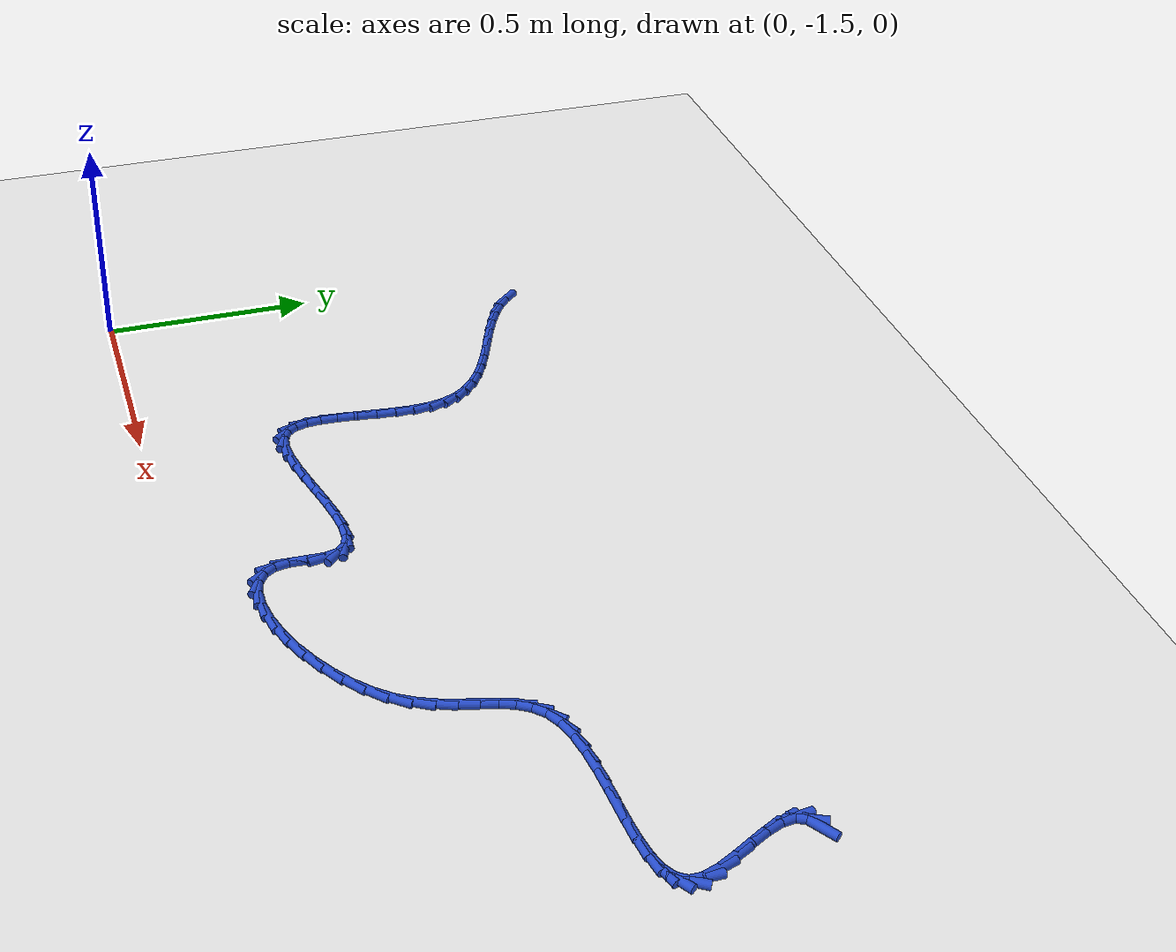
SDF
<sdf version="1.6">
 <world name="default">
  <model name="ground_plane">
   <static>1</static>
   <link name="link">
    <collision name="collision">
     <geometry><plane><normal>0 0 1</normal><size>100 100</size></plane></geometry>
     <surface><friction><ode><mu>100</mu><mu2>50</mu2></ode></friction></surface>
    </collision>
    <visual name="visual">
     <cast_shadows>0</cast_shadows>
     <geometry><plane><normal>0 0 1</normal><size>100 100</size></plane></geometry>
     <material>
      <script><uri>file://media/materials/scripts/gazebo.material</uri><name>Gazebo/WhiteGlow</name></script>
     </material>
    </visual>
   </link>
  </model>
  <model name="line">
   <link name="link_146">
    <pose>1.9742459189359969 -0.4924511090165544 0.01 0 1.57 0.5927250253913241</pose>
    <collision name="collision">
     <geometry><cylinder><radius>0.01</radius><length>0.08</length></cylinder></geometry>
    </collision>
    <visual name="visual">
     <material>
      <script><name>Gazebo/Blue</name><uri>file://media/materials/scripts/gazebo.material</uri></script>
     </material>
     <geometry><cylinder><radius>0.01</radius><length>0.08</length></cylinder></geometry>
    </visual>
   </link>
   <link name="link_147">
    <pose>1.9532598775533594 -0.5065854080276739 0.01 0 1.57 1.1515127034913326</pose>
    <collision name="collision">
     <geometry><cylinder><radius>0.01</radius><length>0.08</length></cylinder></geometry>
    </collision>
    <visual name="visual">
     <material>
      <script><name>Gazebo/Blue</name><uri>file://media/materials/scripts/gazebo.material</uri></script>
     </material>
     <geometry><cylinder><radius>0.01</radius><length>0.08</length></cylinder></geometry>
    </visual>
   </link>
   <link name="link_148">
    <pose>1.9439311436622808 -0.5275152928757204 0.01 0 1.57 -1.4496715551300534</pose>
    <collision name="collision">
     <geometry><cylinder><radius>0.01</radius><length>0.08</length></cylinder></geometry>
    </collision>
    <visual name="visual">
     <material>
      <script><name>Gazebo/Blue</name><uri>file://media/materials/scripts/gazebo.material</uri></script>
     </material>
     <geometry><cylinder><radius>0.01</radius><length>0.08</length></cylinder></geometry>
    </visual>
   </link>
   <link name="link_149">
    <pose>1.947414877105043 -0.5561360270688028 0.01 0 1.57 -1.2044357946726887</pose>
    <collision name="collision">
     <geometry><cylinder><radius>0.01</radius><length>0.08</length></cylinder></geometry>
    </collision>
    <visual name="visual">
     <material>
      <script><name>Gazebo/Blue</name><uri>file://media/materials/scripts/gazebo.material</uri></script>
     </material>
     <geometry><cylinder><radius>0.01</radius><length>0.08</length></cylinder></geometry>
    </visual>
   </link>
   <link name="link_150">
    <pose>1.9606803501371817 -0.5907101557159912 0.01 0 1.57 -1.1108020564322227</pose>
    <collision name="collision">
     <geometry><cylinder><radius>0.01</radius><length>0.08</length></cylinder></geometry>
    </collision>
    <visual name="visual">
     <material>
      <script><name>Gazebo/Blue</name><uri>file://media/materials/scripts/gazebo.material</uri></script>
     </material>
     <geometry><cylinder><radius>0.01</radius><length>0.08</length></cylinder></geometry>
    </visual>
   </link>
   <link name="link_151">
    <pose>1.9795372184609472 -0.6287708818758583 0.01 0 1.57 -1.0925666337484836</pose>
    <collision name="collision">
     <geometry><cylinder><radius>0.01</radius><length>0.08</length></cylinder></geometry>
    </collision>
    <visual name="visual">
     <material>
      <script><name>Gazebo/Blue</name><uri>file://media/materials/scripts/gazebo.material</uri></script>
     </material>
     <geometry><cylinder><radius>0.01</radius><length>0.08</length></cylinder></geometry>
    </visual>
   </link>
   <link name="link_152">
    <pose>1.999795095599758 -0.6678513820785567 0.01 0 1.57 -1.1362173610566686</pose>
    <collision name="collision">
     <geometry><cylinder><radius>0.01</radius><length>0.08</length></cylinder></geometry>
    </collision>
    <visual name="visual">
     <material>
      <script><name>Gazebo/Blue</name><uri>file://media/materials/scripts/gazebo.material</uri></script>
     </material>
     <geometry><cylinder><radius>0.01</radius><length>0.08</length></cylinder></geometry>
    </visual>
   </link>
   <link name="link_153">
    <pose>2.0172635950770332 -0.7054848328542397 0.01 0 1.57 -1.2692259519066553</pose>
    <collision name="collision">
     <geometry><cylinder><radius>0.01</radius><length>0.08</length></cylinder></geometry>
    </collision>
    <visual name="visual">
     <material>
      <script><name>Gazebo/Blue</name><uri>file://media/materials/scripts/gazebo.material</uri></script>
     </material>
     <geometry><cylinder><radius>0.01</radius><length>0.08</length></cylinder></geometry>
    </visual>
   </link>
   <link name="link_154">
    <pose>2.027752330416192 -0.7392044107330604 0.01 0 1.57 1.5520555638965778</pose>
    <collision name="collision">
     <geometry><cylinder><radius>0.01</radius><length>0.08</length></cylinder></geometry>
    </collision>
    <visual name="visual">
     <material>
      <script><name>Gazebo/Blue</name><uri>file://media/materials/scripts/gazebo.material</uri></script>
     </material>
     <geometry><cylinder><radius>0.01</radius><length>0.08</length></cylinder></geometry>
    </visual>
   </link>
   <link name="link_155">
    <pose>2.0272380365816627 -0.7666437218469512 0.01 0 1.57 1.025346782579115</pose>
    <collision name="collision">
     <geometry><cylinder><radius>0.01</radius><length>0.08</length></cylinder></geometry>
    </collision>
    <visual name="visual">
     <material>
      <script><name>Gazebo/Blue</name><uri>file://media/materials/scripts/gazebo.material</uri></script>
     </material>
     <geometry><cylinder><radius>0.01</radius><length>0.08</length></cylinder></geometry>
    </visual>
   </link>
   <link name="link_156">
    <pose>2.0147282184147666 -0.7872576767037616 0.01 0 1.57 0.5754466343946573</pose>
    <collision name="collision">
     <geometry><cylinder><radius>0.01</radius><length>0.08</length></cylinder></geometry>
    </collision>
    <visual name="visual">
     <material>
      <script><name>Gazebo/Blue</name><uri>file://media/materials/scripts/gazebo.material</uri></script>
     </material>
     <geometry><cylinder><radius>0.01</radius><length>0.08</length></cylinder></geometry>
    </visual>
   </link>
   <link name="link_157">
    <pose>1.991868327632176 -0.8020864279718063 0.01 0 1.57 0.31155128155460887</pose>
    <collision name="collision">
     <geometry><cylinder><radius>0.01</radius><length>0.08</length></cylinder></geometry>
    </collision>
    <visual name="visual">
     <material>
      <script><name>Gazebo/Blue</name><uri>file://media/materials/scripts/gazebo.material</uri></script>
     </material>
     <geometry><cylinder><radius>0.01</radius><length>0.08</length></cylinder></geometry>
    </visual>
   </link>
   <link name="link_158">
    <pose>1.9603918979035446 -0.8122230601000764 0.01 0 1.57 0.16880802236869444</pose>
    <collision name="collision">
     <geometry><cylinder><radius>0.01</radius><length>0.08</length></cylinder></geometry>
    </collision>
    <visual name="visual">
     <material>
      <script><name>Gazebo/Blue</name><uri>file://media/materials/scripts/gazebo.material</uri></script>
     </material>
     <geometry><cylinder><radius>0.01</radius><length>0.08</length></cylinder></geometry>
    </visual>
   </link>
   <link name="link_159">
    <pose>1.9220324628985264 -0.8187606575375634 0.01 0 1.57 0.09239871892687945</pose>
    <collision name="collision">
     <geometry><cylinder><radius>0.01</radius><length>0.08</length></cylinder></geometry>
    </collision>
    <visual name="visual">
     <material>
      <script><name>Gazebo/Blue</name><uri>file://media/materials/scripts/gazebo.material</uri></script>
     </material>
     <geometry><cylinder><radius>0.01</radius><length>0.08</length></cylinder></geometry>
    </visual>
   </link>
   <link name="link_160">
    <pose>1.878523556286774 -0.8227923047332586 0.01 0 1.57 0.055750162579972305</pose>
    <collision name="collision">
     <geometry><cylinder><radius>0.01</radius><length>0.08</length></cylinder></geometry>
    </collision>
    <visual name="visual">
     <material>
      <script><name>Gazebo/Blue</name><uri>file://media/materials/scripts/gazebo.material</uri></script>
     </material>
     <geometry><cylinder><radius>0.01</radius><length>0.08</length></cylinder></geometry>
    </visual>
   </link>
   <link name="link_161">
    <pose>1.831598711737942 -0.8254110861361525 0.01 0 1.57 0.047262251733929075</pose>
    <collision name="collision">
     <geometry><cylinder><radius>0.01</radius><length>0.08</length></cylinder></geometry>
    </collision>
    <visual name="visual">
     <material>
      <script><name>Gazebo/Blue</name><uri>file://media/materials/scripts/gazebo.material</uri></script>
     </material>
     <geometry><cylinder><radius>0.01</radius><length>0.08</length></cylinder></geometry>
    </visual>
   </link>
   <link name="link_162">
    <pose>1.7829914629216823 -0.8277100861952367 0.01 0 1.57 0.06318900747889973</pose>
    <collision name="collision">
     <geometry><cylinder><radius>0.01</radius><length>0.08</length></cylinder></geometry>
    </collision>
    <visual name="visual">
     <material>
      <script><name>Gazebo/Blue</name><uri>file://media/materials/scripts/gazebo.material</uri></script>
     </material>
     <geometry><cylinder><radius>0.01</radius><length>0.08</length></cylinder></geometry>
    </visual>
   </link>
   <link name="link_163">
    <pose>1.734435343507651 -0.8307823893595021 0.01 0 1.57 0.1052021469178204</pose>
    <collision name="collision">
     <geometry><cylinder><radius>0.01</radius><length>0.08</length></cylinder></geometry>
    </collision>
    <visual name="visual">
     <material>
      <script><name>Gazebo/Blue</name><uri>file://media/materials/scripts/gazebo.material</uri></script>
     </material>
     <geometry><cylinder><radius>0.01</radius><length>0.08</length></cylinder></geometry>
    </visual>
   </link>
   <link name="link_164">
    <pose>1.6876638871655014 -0.8357210800779402 0.01 0 1.57 0.18061282484338492</pose>
    <collision name="collision">
     <geometry><cylinder><radius>0.01</radius><length>0.08</length></cylinder></geometry>
    </collision>
    <visual name="visual">
     <material>
      <script><name>Gazebo/Blue</name><uri>file://media/materials/scripts/gazebo.material</uri></script>
     </material>
     <geometry><cylinder><radius>0.01</radius><length>0.08</length></cylinder></geometry>
    </visual>
   </link>
   <link name="link_165">
    <pose>1.6444106275648864 -0.843619242799542 0.01 0 1.57 0.30468765225731226</pose>
    <collision name="collision">
     <geometry><cylinder><radius>0.01</radius><length>0.08</length></cylinder></geometry>
    </collision>
    <visual name="visual">
     <material>
      <script><name>Gazebo/Blue</name><uri>file://media/materials/scripts/gazebo.material</uri></script>
     </material>
     <geometry><cylinder><radius>0.01</radius><length>0.08</length></cylinder></geometry>
    </visual>
   </link>
   <link name="link_166">
    <pose>1.60640909837546 -0.8555699619732985 0.01 0 1.57 0.5037688649744557</pose>
    <collision name="collision">
     <geometry><cylinder><radius>0.01</radius><length>0.08</length></cylinder></geometry>
    </collision>
    <visual name="visual">
     <material>
      <script><name>Gazebo/Blue</name><uri>file://media/materials/scripts/gazebo.material</uri></script>
     </material>
     <geometry><cylinder><radius>0.01</radius><length>0.08</length></cylinder></geometry>
    </visual>
   </link>
   <link name="link_167">
    <pose>1.5753928332668754 -0.8726663220482009 0.01 0 1.57 0.7883804749580129</pose>
    <collision name="collision">
     <geometry><cylinder><radius>0.01</radius><length>0.08</length></cylinder></geometry>
    </collision>
    <visual name="visual">
     <material>
      <script><name>Gazebo/Blue</name><uri>file://media/materials/scripts/gazebo.material</uri></script>
     </material>
     <geometry><cylinder><radius>0.01</radius><length>0.08</length></cylinder></geometry>
    </visual>
   </link>
   <link name="link_168">
    <pose>1.5525105443639882 -0.8956855038436491 0.01 0 1.57 1.051151530870826</pose>
    <collision name="collision">
     <geometry><cylinder><radius>0.01</radius><length>0.08</length></cylinder></geometry>
    </collision>
    <visual name="visual">
     <material>
      <script><name>Gazebo/Blue</name><uri>file://media/materials/scripts/gazebo.material</uri></script>
     </material>
     <geometry><cylinder><radius>0.01</radius><length>0.08</length></cylinder></geometry>
    </visual>
   </link>
   <link name="link_169">
    <pose>1.5363117178503791 -0.9240006617434942 0.01 0 1.57 1.2264971796139668</pose>
    <collision name="collision">
     <geometry><cylinder><radius>0.01</radius><length>0.08</length></cylinder></geometry>
    </collision>
    <visual name="visual">
     <material>
      <script><name>Gazebo/Blue</name><uri>file://media/materials/scripts/gazebo.material</uri></script>
     </material>
     <geometry><cylinder><radius>0.01</radius><length>0.08</length></cylinder></geometry>
    </visual>
   </link>
   <link name="link_170">
    <pose>1.524623986070457 -0.9565950256326409 0.01 0 1.57 1.3157421739674577</pose>
    <collision name="collision">
     <geometry><cylinder><radius>0.01</radius><length>0.08</length></cylinder></geometry>
    </collision>
    <visual name="visual">
     <material>
      <script><name>Gazebo/Blue</name><uri>file://media/materials/scripts/gazebo.material</uri></script>
     </material>
     <geometry><cylinder><radius>0.01</radius><length>0.08</length></cylinder></geometry>
    </visual>
   </link>
   <link name="link_171">
    <pose>1.5152749532234642 -0.9924518101927892 0.01 0 1.57 1.3343048700153142</pose>
    <collision name="collision">
     <geometry><cylinder><radius>0.01</radius><length>0.08</length></cylinder></geometry>
    </collision>
    <visual name="visual">
     <material>
      <script><name>Gazebo/Blue</name><uri>file://media/materials/scripts/gazebo.material</uri></script>
     </material>
     <geometry><cylinder><radius>0.01</radius><length>0.08</length></cylinder></geometry>
    </visual>
   </link>
   <link name="link_172">
    <pose>1.5060922235086425 -1.0305542301056414 0.01 0 1.57 1.2936414008397663</pose>
    <collision name="collision">
     <geometry><cylinder><radius>0.01</radius><length>0.08</length></cylinder></geometry>
    </collision>
    <visual name="visual">
     <material>
      <script><name>Gazebo/Blue</name><uri>file://media/materials/scripts/gazebo.material</uri></script>
     </material>
     <geometry><cylinder><radius>0.01</radius><length>0.08</length></cylinder></geometry>
    </visual>
   </link>
   <link name="link_173">
    <pose>1.4949034011252327 -1.0698855000528984 0.01 0 1.57 1.2001390613051828</pose>
    <collision name="collision">
     <geometry><cylinder><radius>0.01</radius><length>0.08</length></cylinder></geometry>
    </collision>
    <visual name="visual">
     <material>
      <script><name>Gazebo/Blue</name><uri>file://media/materials/scripts/gazebo.material</uri></script>
     </material>
     <geometry><cylinder><radius>0.01</radius><length>0.08</length></cylinder></geometry>
    </visual>
   </link>
   <link name="link_174">
    <pose>1.479536090272478 -1.1094288347162629 0.01 0 1.57 1.059844154507421</pose>
    <collision name="collision">
     <geometry><cylinder><radius>0.01</radius><length>0.08</length></cylinder></geometry>
    </collision>
    <visual name="visual">
     <material>
      <script><name>Gazebo/Blue</name><uri>file://media/materials/scripts/gazebo.material</uri></script>
     </material>
     <geometry><cylinder><radius>0.01</radius><length>0.08</length></cylinder></geometry>
    </visual>
   </link>
   <link name="link_175">
    <pose>1.457818803938722 -1.1481675421596864 0.01 0 1.57 0.8996570483291669</pose>
    <collision name="collision">
     <geometry><cylinder><radius>0.01</radius><length>0.08</length></cylinder></geometry>
    </collision>
    <visual name="visual">
     <material>
      <script><name>Gazebo/Blue</name><uri>file://media/materials/scripts/gazebo.material</uri></script>
     </material>
     <geometry><cylinder><radius>0.01</radius><length>0.08</length></cylinder></geometry>
    </visual>
   </link>
   <link name="link_176">
    <pose>1.4284327501292962 -1.1851725487734603 0.01 0 1.57 0.7663166353705261</pose>
    <collision name="collision">
     <geometry><cylinder><radius>0.01</radius><length>0.08</length></cylinder></geometry>
    </collision>
    <visual name="visual">
     <material>
      <script><name>Gazebo/Blue</name><uri>file://media/materials/scripts/gazebo.material</uri></script>
     </material>
     <geometry><cylinder><radius>0.01</radius><length>0.08</length></cylinder></geometry>
    </visual>
   </link>
   <link name="link_177">
    <pose>1.3924942934881663 -1.2197650044683581 0.01 0 1.57 0.6564796295011811</pose>
    <collision name="collision">
     <geometry><cylinder><radius>0.01</radius><length>0.08</length></cylinder></geometry>
    </collision>
    <visual name="visual">
     <material>
      <script><name>Gazebo/Blue</name><uri>file://media/materials/scripts/gazebo.material</uri></script>
     </material>
     <geometry><cylinder><radius>0.01</radius><length>0.08</length></cylinder></geometry>
    </visual>
   </link>
   <link name="link_178">
    <pose>1.3515516904795275 -1.2513104380217972 0.01 0 1.57 0.5604578425229108</pose>
    <collision name="collision">
     <geometry><cylinder><radius>0.01</radius><length>0.08</length></cylinder></geometry>
    </collision>
    <visual name="visual">
     <material>
      <script><name>Gazebo/Blue</name><uri>file://media/materials/scripts/gazebo.material</uri></script>
     </material>
     <geometry><cylinder><radius>0.01</radius><length>0.08</length></cylinder></geometry>
    </visual>
   </link>
   <link name="link_179">
    <pose>1.30715319756757 -1.2791743782111955 0.01 0 1.57 0.47044694724672137</pose>
    <collision name="collision">
     <geometry><cylinder><radius>0.01</radius><length>0.08</length></cylinder></geometry>
    </collision>
    <visual name="visual">
     <material>
      <script><name>Gazebo/Blue</name><uri>file://media/materials/scripts/gazebo.material</uri></script>
     </material>
     <geometry><cylinder><radius>0.01</radius><length>0.08</length></cylinder></geometry>
    </visual>
   </link>
   <link name="link_180">
    <pose>1.2608470712164874 -1.3027223538139718 0.01 0 1.57 0.3792373241582755</pose>
    <collision name="collision">
     <geometry><cylinder><radius>0.01</radius><length>0.08</length></cylinder></geometry>
    </collision>
    <visual name="visual">
     <material>
      <script><name>Gazebo/Blue</name><uri>file://media/materials/scripts/gazebo.material</uri></script>
     </material>
     <geometry><cylinder><radius>0.01</radius><length>0.08</length></cylinder></geometry>
    </visual>
   </link>
   <link name="link_181">
    <pose>1.214181567890471 -1.3213198936075432 0.01 0 1.57 0.2786922162453223</pose>
    <collision name="collision">
     <geometry><cylinder><radius>0.01</radius><length>0.08</length></cylinder></geometry>
    </collision>
    <visual name="visual">
     <material>
      <script><name>Gazebo/Blue</name><uri>file://media/materials/scripts/gazebo.material</uri></script>
     </material>
     <geometry><cylinder><radius>0.01</radius><length>0.08</length></cylinder></geometry>
    </visual>
   </link>
   <link name="link_182">
    <pose>1.1687049440537134 -1.334332526369329 0.01 0 1.57 0.157627034241959</pose>
    <collision name="collision">
     <geometry><cylinder><radius>0.01</radius><length>0.08</length></cylinder></geometry>
    </collision>
    <visual name="visual">
     <material>
      <script><name>Gazebo/Blue</name><uri>file://media/materials/scripts/gazebo.material</uri></script>
     </material>
     <geometry><cylinder><radius>0.01</radius><length>0.08</length></cylinder></geometry>
    </visual>
   </link>
   <link name="link_183">
    <pose>1.125965456170406 -1.3411257808767454 0.01 0 1.57 -0.0015757728441299767</pose>
    <collision name="collision">
     <geometry><cylinder><radius>0.01</radius><length>0.08</length></cylinder></geometry>
    </collision>
    <visual name="visual">
     <material>
      <script><name>Gazebo/Blue</name><uri>file://media/materials/scripts/gazebo.material</uri></script>
     </material>
     <geometry><cylinder><radius>0.01</radius><length>0.08</length></cylinder></geometry>
    </visual>
   </link>
   <link name="link_184">
    <pose>1.0875113607047415 -1.3410651859072114 0.01 0 1.57 -0.227413480237816</pose>
    <collision name="collision">
     <geometry><cylinder><radius>0.01</radius><length>0.08</length></cylinder></geometry>
    </collision>
    <visual name="visual">
     <material>
      <script><name>Gazebo/Blue</name><uri>file://media/materials/scripts/gazebo.material</uri></script>
     </material>
     <geometry><cylinder><radius>0.01</radius><length>0.08</length></cylinder></geometry>
    </visual>
   </link>
   <link name="link_185">
    <pose>1.0548909141209117 -1.3335162702381456 0.01 0 1.57 -0.5556769466233441</pose>
    <collision name="collision">
     <geometry><cylinder><radius>0.01</radius><length>0.08</length></cylinder></geometry>
    </collision>
    <visual name="visual">
     <material>
      <script><name>Gazebo/Blue</name><uri>file://media/materials/scripts/gazebo.material</uri></script>
     </material>
     <geometry><cylinder><radius>0.01</radius><length>0.08</length></cylinder></geometry>
    </visual>
   </link>
   <link name="link_186">
    <pose>1.0296523728831097 -1.3178445626469641 0.01 0 1.57 -0.9821592145348254</pose>
    <collision name="collision">
     <geometry><cylinder><radius>0.01</radius><length>0.08</length></cylinder></geometry>
    </collision>
    <visual name="visual">
     <material>
      <script><name>Gazebo/Blue</name><uri>file://media/materials/scripts/gazebo.material</uri></script>
     </material>
     <geometry><cylinder><radius>0.01</radius><length>0.08</length></cylinder></geometry>
    </visual>
   </link>
   <link name="link_187">
    <pose>1.013343993455527 -1.2934155919110868 0.01 0 1.57 -1.3935499002387295</pose>
    <collision name="collision">
     <geometry><cylinder><radius>0.01</radius><length>0.08</length></cylinder></geometry>
    </collision>
    <visual name="visual">
     <material>
      <script><name>Gazebo/Blue</name><uri>file://media/materials/scripts/gazebo.material</uri></script>
     </material>
     <geometry><cylinder><radius>0.01</radius><length>0.08</length></cylinder></geometry>
    </visual>
   </link>
   <link name="link_188">
    <pose>1.0073159937049192 -1.2597633403529949 0.01 0 1.57 1.5401775754105855</pose>
    <collision name="collision">
     <geometry><cylinder><radius>0.01</radius><length>0.08</length></cylinder></geometry>
    </collision>
    <visual name="visual">
     <material>
      <script><name>Gazebo/Blue</name><uri>file://media/materials/scripts/gazebo.material</uri></script>
     </material>
     <geometry><cylinder><radius>0.01</radius><length>0.08</length></cylinder></geometry>
    </visual>
   </link>
   <link name="link_189">
    <pose>1.0085291147871087 -1.2201555216106799 0.01 0 1.57 1.5419346475363271</pose>
    <collision name="collision">
     <geometry><cylinder><radius>0.01</radius><length>0.08</length></cylinder></geometry>
    </collision>
    <visual name="visual">
     <material>
      <script><name>Gazebo/Blue</name><uri>file://media/materials/scripts/gazebo.material</uri></script>
     </material>
     <geometry><cylinder><radius>0.01</radius><length>0.08</length></cylinder></geometry>
    </visual>
   </link>
   <link name="link_190">
    <pose>1.0096445957863582 -1.1815170473397718 0.01 0 1.57 -1.3647591778816488</pose>
    <collision name="collision">
     <geometry><cylinder><radius>0.01</radius><length>0.08</length></cylinder></geometry>
    </collision>
    <visual name="visual">
     <material>
      <script><name>Gazebo/Blue</name><uri>file://media/materials/scripts/gazebo.material</uri></script>
     </material>
     <geometry><cylinder><radius>0.01</radius><length>0.08</length></cylinder></geometry>
    </visual>
   </link>
   <link name="link_191">
    <pose>1.0032331074793368 -1.1508405155348984 0.01 0 1.57 -0.8328737854173798</pose>
    <collision name="collision">
     <geometry><cylinder><radius>0.01</radius><length>0.08</length></cylinder></geometry>
    </collision>
    <visual name="visual">
     <material>
      <script><name>Gazebo/Blue</name><uri>file://media/materials/scripts/gazebo.material</uri></script>
     </material>
     <geometry><cylinder><radius>0.01</radius><length>0.08</length></cylinder></geometry>
    </visual>
   </link>
   <link name="link_192">
    <pose>0.9856501857389968 -1.131503477661124 0.01 0 1.57 -0.3346798979624391</pose>
    <collision name="collision">
     <geometry><cylinder><radius>0.01</radius><length>0.08</length></cylinder></geometry>
    </collision>
    <visual name="visual">
     <material>
      <script><name>Gazebo/Blue</name><uri>file://media/materials/scripts/gazebo.material</uri></script>
     </material>
     <geometry><cylinder><radius>0.01</radius><length>0.08</length></cylinder></geometry>
    </visual>
   </link>
   <link name="link_193">
    <pose>0.9583531566046342 -1.1220106011133495 0.01 0 1.57 -0.0422588392079329</pose>
    <collision name="collision">
     <geometry><cylinder><radius>0.01</radius><length>0.08</length></cylinder></geometry>
    </collision>
    <visual name="visual">
     <material>
      <script><name>Gazebo/Blue</name><uri>file://media/materials/scripts/gazebo.material</uri></script>
     </material>
     <geometry><cylinder><radius>0.01</radius><length>0.08</length></cylinder></geometry>
    </visual>
   </link>
   <link name="link_194">
    <pose>0.9231595868445718 -1.1205224757661025 0.01 0 1.57 0.11284368964368484</pose>
    <collision name="collision">
     <geometry><cylinder><radius>0.01</radius><length>0.08</length></cylinder></geometry>
    </collision>
    <visual name="visual">
     <material>
      <script><name>Gazebo/Blue</name><uri>file://media/materials/scripts/gazebo.material</uri></script>
     </material>
     <geometry><cylinder><radius>0.01</radius><length>0.08</length></cylinder></geometry>
    </visual>
   </link>
   <link name="link_195">
    <pose>0.881887043227133 -1.1251996914939106 0.01 0 1.57 0.19520597037461318</pose>
    <collision name="collision">
     <geometry><cylinder><radius>0.01</radius><length>0.08</length></cylinder></geometry>
    </collision>
    <visual name="visual">
     <material>
      <script><name>Gazebo/Blue</name><uri>file://media/materials/scripts/gazebo.material</uri></script>
     </material>
     <geometry><cylinder><radius>0.01</radius><length>0.08</length></cylinder></geometry>
    </visual>
   </link>
   <link name="link_196">
    <pose>0.8363530925206404 -1.1342028381713003 0.01 0 1.57 0.23505218108279974</pose>
    <collision name="collision">
     <geometry><cylinder><radius>0.01</radius><length>0.08</length></cylinder></geometry>
    </collision>
    <visual name="visual">
     <material>
      <script><name>Gazebo/Blue</name><uri>file://media/materials/scripts/gazebo.material</uri></script>
     </material>
     <geometry><cylinder><radius>0.01</radius><length>0.08</length></cylinder></geometry>
    </visual>
   </link>
   <link name="link_197">
    <pose>0.7883753014934177 -1.1456925056727998 0.01 0 1.57 0.24470293840936824</pose>
    <collision name="collision">
     <geometry><cylinder><radius>0.01</radius><length>0.08</length></cylinder></geometry>
    </collision>
    <visual name="visual">
     <material>
      <script><name>Gazebo/Blue</name><uri>file://media/materials/scripts/gazebo.material</uri></script>
     </material>
     <geometry><cylinder><radius>0.01</radius><length>0.08</length></cylinder></geometry>
    </visual>
   </link>
   <link name="link_198">
    <pose>0.7397712369137874 -1.157829283872936 0.01 0 1.57 0.22686032370801779</pose>
    <collision name="collision">
     <geometry><cylinder><radius>0.01</radius><length>0.08</length></cylinder></geometry>
    </collision>
    <visual name="visual">
     <material>
      <script><name>Gazebo/Blue</name><uri>file://media/materials/scripts/gazebo.material</uri></script>
     </material>
     <geometry><cylinder><radius>0.01</radius><length>0.08</length></cylinder></geometry>
    </visual>
   </link>
   <link name="link_199">
    <pose>0.692358465550073 -1.1687737626462367 0.01 0 1.57 0.1763487124250665</pose>
    <collision name="collision">
     <geometry><cylinder><radius>0.01</radius><length>0.08</length></cylinder></geometry>
    </collision>
    <visual name="visual">
     <material>
      <script><name>Gazebo/Blue</name><uri>file://media/materials/scripts/gazebo.material</uri></script>
     </material>
     <geometry><cylinder><radius>0.01</radius><length>0.08</length></cylinder></geometry>
    </visual>
   </link>
   <link name="link_200">
    <pose>0.6479545541705963 -1.1766865318672295 0.01 0 1.57 0.07670225425259468</pose>
    <collision name="collision">
     <geometry><cylinder><radius>0.01</radius><length>0.08</length></cylinder></geometry>
    </collision>
    <visual name="visual">
     <material>
      <script><name>Gazebo/Blue</name><uri>file://media/materials/scripts/gazebo.material</uri></script>
     </material>
     <geometry><cylinder><radius>0.01</radius><length>0.08</length></cylinder></geometry>
    </visual>
   </link>
   <link name="link_201">
    <pose>0.6083770695436825 -1.1797281814104412 0.01 0 1.57 -0.11094525778364064</pose>
    <collision name="collision">
     <geometry><cylinder><radius>0.01</radius><length>0.08</length></cylinder></geometry>
    </collision>
    <visual name="visual">
     <material>
      <script><name>Gazebo/Blue</name><uri>file://media/materials/scripts/gazebo.material</uri></script>
     </material>
     <geometry><cylinder><radius>0.01</radius><length>0.08</length></cylinder></geometry>
    </visual>
   </link>
   <link name="link_202">
    <pose>0.5754435784376539 -1.1760593011503992 0.01 0 1.57 -0.46090104168694634</pose>
    <collision name="collision">
     <geometry><cylinder><radius>0.01</radius><length>0.08</length></cylinder></geometry>
    </collision>
    <visual name="visual">
     <material>
      <script><name>Gazebo/Blue</name><uri>file://media/materials/scripts/gazebo.material</uri></script>
     </material>
     <geometry><cylinder><radius>0.01</radius><length>0.08</length></cylinder></geometry>
    </visual>
   </link>
   <link name="link_203">
    <pose>0.5509258051070073 -1.163884473902571 0.01 0 1.57 -0.926891169305378</pose>
    <collision name="collision">
     <geometry><cylinder><radius>0.01</radius><length>0.08</length></cylinder></geometry>
    </collision>
    <visual name="visual">
     <material>
      <script><name>Gazebo/Blue</name><uri>file://media/materials/scripts/gazebo.material</uri></script>
     </material>
     <geometry><cylinder><radius>0.01</radius><length>0.08</length></cylinder></geometry>
    </visual>
   </link>
   <link name="link_204">
    <pose>0.535118441953845 -1.142825721658977 0.01 0 1.57 -1.2802620623963321</pose>
    <collision name="collision">
     <geometry><cylinder><radius>0.01</radius><length>0.08</length></cylinder></geometry>
    </collision>
    <visual name="visual">
     <material>
      <script><name>Gazebo/Blue</name><uri>file://media/materials/scripts/gazebo.material</uri></script>
     </material>
     <geometry><cylinder><radius>0.01</radius><length>0.08</length></cylinder></geometry>
    </visual>
   </link>
   <link name="link_205">
    <pose>0.5265573811507152 -1.1141929056718798 0.01 0 1.57 -1.4881764483739548</pose>
    <collision name="collision">
     <geometry><cylinder><radius>0.01</radius><length>0.08</length></cylinder></geometry>
    </collision>
    <visual name="visual">
     <material>
      <script><name>Gazebo/Blue</name><uri>file://media/materials/scripts/gazebo.material</uri></script>
     </material>
     <geometry><cylinder><radius>0.01</radius><length>0.08</length></cylinder></geometry>
    </visual>
   </link>
   <link name="link_206">
    <pose>0.5236757796112836 -1.079394477471416 0.01 0 1.57 1.539685237800071</pose>
    <collision name="collision">
     <geometry><cylinder><radius>0.01</radius><length>0.08</length></cylinder></geometry>
    </collision>
    <visual name="visual">
     <material>
      <script><name>Gazebo/Blue</name><uri>file://media/materials/scripts/gazebo.material</uri></script>
     </material>
     <geometry><cylinder><radius>0.01</radius><length>0.08</length></cylinder></geometry>
    </visual>
   </link>
   <link name="link_207">
    <pose>0.5249067942492152 -1.03983888858772 0.01 0 1.57 1.482994460478661</pose>
    <collision name="collision">
     <geometry><cylinder><radius>0.01</radius><length>0.08</length></cylinder></geometry>
    </collision>
    <visual name="visual">
     <material>
      <script><name>Gazebo/Blue</name><uri>file://media/materials/scripts/gazebo.material</uri></script>
     </material>
     <geometry><cylinder><radius>0.01</radius><length>0.08</length></cylinder></geometry>
    </visual>
   </link>
   <link name="link_208">
    <pose>0.5286835819781753 -0.9969345905509263 0.01 0 1.57 1.4651422778868388</pose>
    <collision name="collision">
     <geometry><cylinder><radius>0.01</radius><length>0.08</length></cylinder></geometry>
    </collision>
    <visual name="visual">
     <material>
      <script><name>Gazebo/Blue</name><uri>file://media/materials/scripts/gazebo.material</uri></script>
     </material>
     <geometry><cylinder><radius>0.01</radius><length>0.08</length></cylinder></geometry>
    </visual>
   </link>
   <link name="link_209">
    <pose>0.5334392997118296 -0.9520900348911727 0.01 0 1.57 1.4792036320787816</pose>
    <collision name="collision">
     <geometry><cylinder><radius>0.01</radius><length>0.08</length></cylinder></geometry>
    </collision>
    <visual name="visual">
     <material>
      <script><name>Gazebo/Blue</name><uri>file://media/materials/scripts/gazebo.material</uri></script>
     </material>
     <geometry><cylinder><radius>0.01</radius><length>0.08</length></cylinder></geometry>
    </visual>
   </link>
   <link name="link_210">
    <pose>0.5376071043638428 -0.9067136731385934 0.01 0 1.57 1.5255898141291624</pose>
    <collision name="collision">
     <geometry><cylinder><radius>0.01</radius><length>0.08</length></cylinder></geometry>
    </collision>
    <visual name="visual">
     <material>
      <script><name>Gazebo/Blue</name><uri>file://media/materials/scripts/gazebo.material</uri></script>
     </material>
     <geometry><cylinder><radius>0.01</radius><length>0.08</length></cylinder></geometry>
    </visual>
   </link>
   <link name="link_211">
    <pose>0.5396201528478808 -0.862213956823324 0.01 0 1.57 -1.5303454401325023</pose>
    <collision name="collision">
     <geometry><cylinder><radius>0.01</radius><length>0.08</length></cylinder></geometry>
    </collision>
    <visual name="visual">
     <material>
      <script><name>Gazebo/Blue</name><uri>file://media/materials/scripts/gazebo.material</uri></script>
     </material>
     <geometry><cylinder><radius>0.01</radius><length>0.08</length></cylinder></geometry>
    </visual>
   </link>
   <link name="link_212">
    <pose>0.5379116020776089 -0.8199993374754999 0.01 0 1.57 -1.3911146639962109</pose>
    <collision name="collision">
     <geometry><cylinder><radius>0.01</radius><length>0.08</length></cylinder></geometry>
    </collision>
    <visual name="visual">
     <material>
      <script><name>Gazebo/Blue</name><uri>file://media/materials/scripts/gazebo.material</uri></script>
     </material>
     <geometry><cylinder><radius>0.01</radius><length>0.08</length></cylinder></geometry>
    </visual>
   </link>
   <link name="link_213">
    <pose>0.5309146089666921 -0.7814782666252562 0.01 0 1.57 -1.1901931008214415</pose>
    <collision name="collision">
     <geometry><cylinder><radius>0.01</radius><length>0.08</length></cylinder></geometry>
    </collision>
    <visual name="visual">
     <material>
      <script><name>Gazebo/Blue</name><uri>file://media/materials/scripts/gazebo.material</uri></script>
     </material>
     <geometry><cylinder><radius>0.01</radius><length>0.08</length></cylinder></geometry>
    </visual>
   </link>
   <link name="link_214">
    <pose>0.5174210284209299 -0.7477537875422633 0.01 0 1.57 -0.9805930918959057</pose>
    <collision name="collision">
     <geometry><cylinder><radius>0.01</radius><length>0.08</length></cylinder></geometry>
    </collision>
    <visual name="visual">
     <material>
      <script><name>Gazebo/Blue</name><uri>file://media/materials/scripts/gazebo.material</uri></script>
     </material>
     <geometry><cylinder><radius>0.01</radius><length>0.08</length></cylinder></geometry>
    </visual>
   </link>
   <link name="link_215">
    <pose>0.4978528399416871 -0.7185409972907693 0.01 0 1.57 -0.7978051869557787</pose>
    <collision name="collision">
     <geometry><cylinder><radius>0.01</radius><length>0.08</length></cylinder></geometry>
    </collision>
    <visual name="visual">
     <material>
      <script><name>Gazebo/Blue</name><uri>file://media/materials/scripts/gazebo.material</uri></script>
     </material>
     <geometry><cylinder><radius>0.01</radius><length>0.08</length></cylinder></geometry>
    </visual>
   </link>
   <link name="link_216">
    <pose>0.47309485768072634 -0.6931609190105529 0.01 0 1.57 -0.6528851887988146</pose>
    <collision name="collision">
     <geometry><cylinder><radius>0.01</radius><length>0.08</length></cylinder></geometry>
    </collision>
    <visual name="visual">
     <material>
      <script><name>Gazebo/Blue</name><uri>file://media/materials/scripts/gazebo.material</uri></script>
     </material>
     <geometry><cylinder><radius>0.01</radius><length>0.08</length></cylinder></geometry>
    </visual>
   </link>
   <link name="link_217">
    <pose>0.44403192715975376 -0.6709345491318998 0.01 0 1.57 -0.5463256187339695</pose>
    <collision name="collision">
     <geometry><cylinder><radius>0.01</radius><length>0.08</length></cylinder></geometry>
    </collision>
    <visual name="visual">
     <material>
      <script><name>Gazebo/Blue</name><uri>file://media/materials/scripts/gazebo.material</uri></script>
     </material>
     <geometry><cylinder><radius>0.01</radius><length>0.08</length></cylinder></geometry>
    </visual>
   </link>
   <link name="link_218">
    <pose>0.41154889390047633 -0.6511828840850968 0.01 0 1.57 -0.47380308722391706</pose>
    <collision name="collision">
     <geometry><cylinder><radius>0.01</radius><length>0.08</length></cylinder></geometry>
    </collision>
    <visual name="visual">
     <material>
      <script><name>Gazebo/Blue</name><uri>file://media/materials/scripts/gazebo.material</uri></script>
     </material>
     <geometry><cylinder><radius>0.01</radius><length>0.08</length></cylinder></geometry>
    </visual>
   </link>
   <link name="link_219">
    <pose>0.3765306034246007 -0.633226920300431 0.01 0 1.57 -0.430500734354494</pose>
    <collision name="collision">
     <geometry><cylinder><radius>0.01</radius><length>0.08</length></cylinder></geometry>
    </collision>
    <visual name="visual">
     <material>
      <script><name>Gazebo/Blue</name><uri>file://media/materials/scripts/gazebo.material</uri></script>
     </material>
     <geometry><cylinder><radius>0.01</radius><length>0.08</length></cylinder></geometry>
    </visual>
   </link>
   <link name="link_220">
    <pose>0.3398619012538338 -0.6163876542081892 0.01 0 1.57 -0.4129502217009648</pose>
    <collision name="collision">
     <geometry><cylinder><radius>0.01</radius><length>0.08</length></cylinder></geometry>
    </collision>
    <visual name="visual">
     <material>
      <script><name>Gazebo/Blue</name><uri>file://media/materials/scripts/gazebo.material</uri></script>
     </material>
     <geometry><cylinder><radius>0.01</radius><length>0.08</length></cylinder></geometry>
    </visual>
   </link>
   <link name="link_221">
    <pose>0.30242763290988234 -0.599986082238658 0.01 0 1.57 -0.4195314072816477</pose>
    <collision name="collision">
     <geometry><cylinder><radius>0.01</radius><length>0.08</length></cylinder></geometry>
    </collision>
    <visual name="visual">
     <material>
      <script><name>Gazebo/Blue</name><uri>file://media/materials/scripts/gazebo.material</uri></script>
     </material>
     <geometry><cylinder><radius>0.01</radius><length>0.08</length></cylinder></geometry>
    </visual>
   </link>
   <link name="link_222">
    <pose>0.265112643914453 -0.5833432008221242 0.01 0 1.57 -0.4505145139782758</pose>
    <collision name="collision">
     <geometry><cylinder><radius>0.01</radius><length>0.08</length></cylinder></geometry>
    </collision>
    <visual name="visual">
     <material>
      <script><name>Gazebo/Blue</name><uri>file://media/materials/scripts/gazebo.material</uri></script>
     </material>
     <geometry><cylinder><radius>0.01</radius><length>0.08</length></cylinder></geometry>
    </visual>
   </link>
   <link name="link_223">
    <pose>0.2288017797892519 -0.5657800063888743 0.01 0 1.57 -0.5079691209228533</pose>
    <collision name="collision">
     <geometry><cylinder><radius>0.01</radius><length>0.08</length></cylinder></geometry>
    </collision>
    <visual name="visual">
     <material>
      <script><name>Gazebo/Blue</name><uri>file://media/materials/scripts/gazebo.material</uri></script>
     </material>
     <geometry><cylinder><radius>0.01</radius><length>0.08</length></cylinder></geometry>
    </visual>
   </link>
   <link name="link_224">
    <pose>0.19437988605598755 -0.5466174953691959 0.01 0 1.57 -0.5954490918283324</pose>
    <collision name="collision">
     <geometry><cylinder><radius>0.01</radius><length>0.08</length></cylinder></geometry>
    </collision>
    <visual name="visual">
     <material>
      <script><name>Gazebo/Blue</name><uri>file://media/materials/scripts/gazebo.material</uri></script>
     </material>
     <geometry><cylinder><radius>0.01</radius><length>0.08</length></cylinder></geometry>
    </visual>
   </link>
   <link name="link_225">
    <pose>0.16273180823636585 -0.5251766641933753 0.01 0 1.57 -0.7169534602891481</pose>
    <collision name="collision">
     <geometry><cylinder><radius>0.01</radius><length>0.08</length></cylinder></geometry>
    </collision>
    <visual name="visual">
     <material>
      <script><name>Gazebo/Blue</name><uri>file://media/materials/scripts/gazebo.material</uri></script>
     </material>
     <geometry><cylinder><radius>0.01</radius><length>0.08</length></cylinder></geometry>
    </visual>
   </link>
   <link name="link_226">
    <pose>0.13474239185209355 -0.5007785092916995 0.01 0 1.57 -0.8664090412392838</pose>
    <collision name="collision">
     <geometry><cylinder><radius>0.01</radius><length>0.08</length></cylinder></geometry>
    </collision>
    <visual name="visual">
     <material>
      <script><name>Gazebo/Blue</name><uri>file://media/materials/scripts/gazebo.material</uri></script>
     </material>
     <geometry><cylinder><radius>0.01</radius><length>0.08</length></cylinder></geometry>
    </visual>
   </link>
  </model>
 </world>
</sdf>
